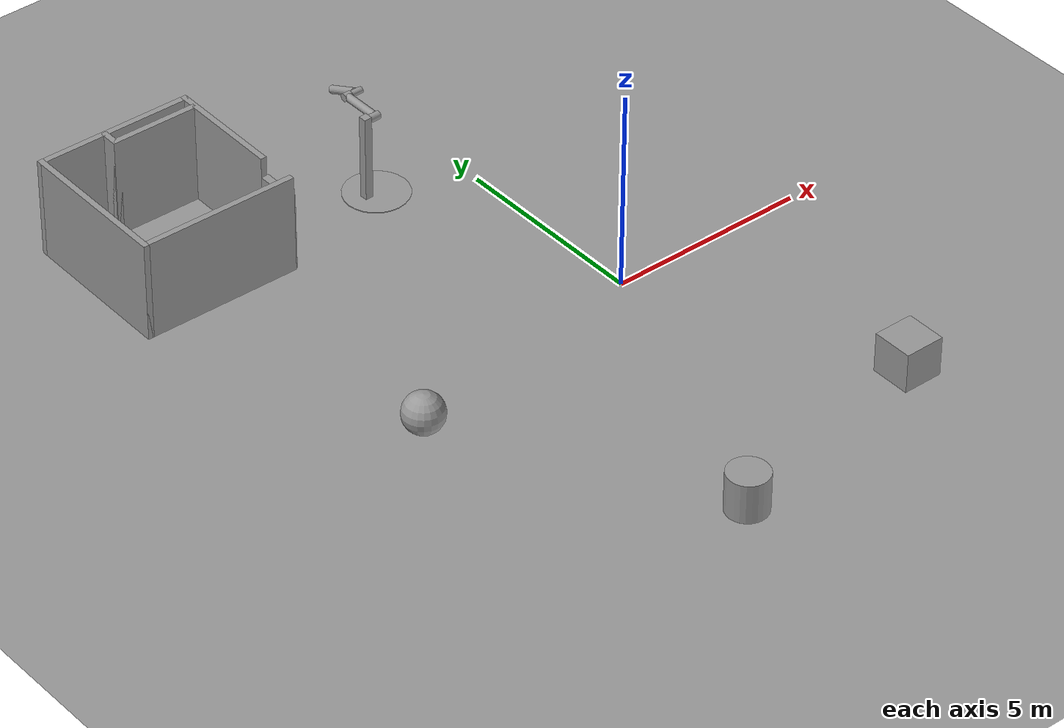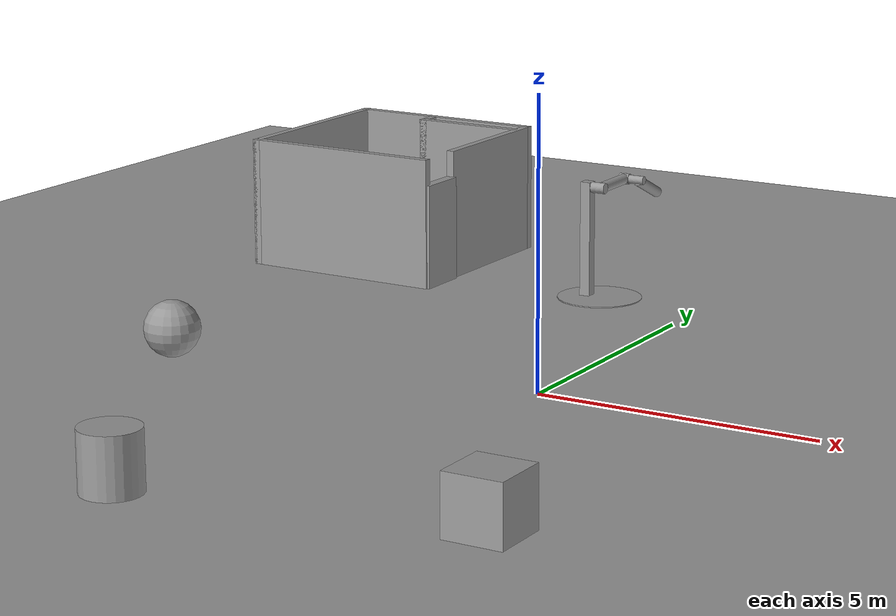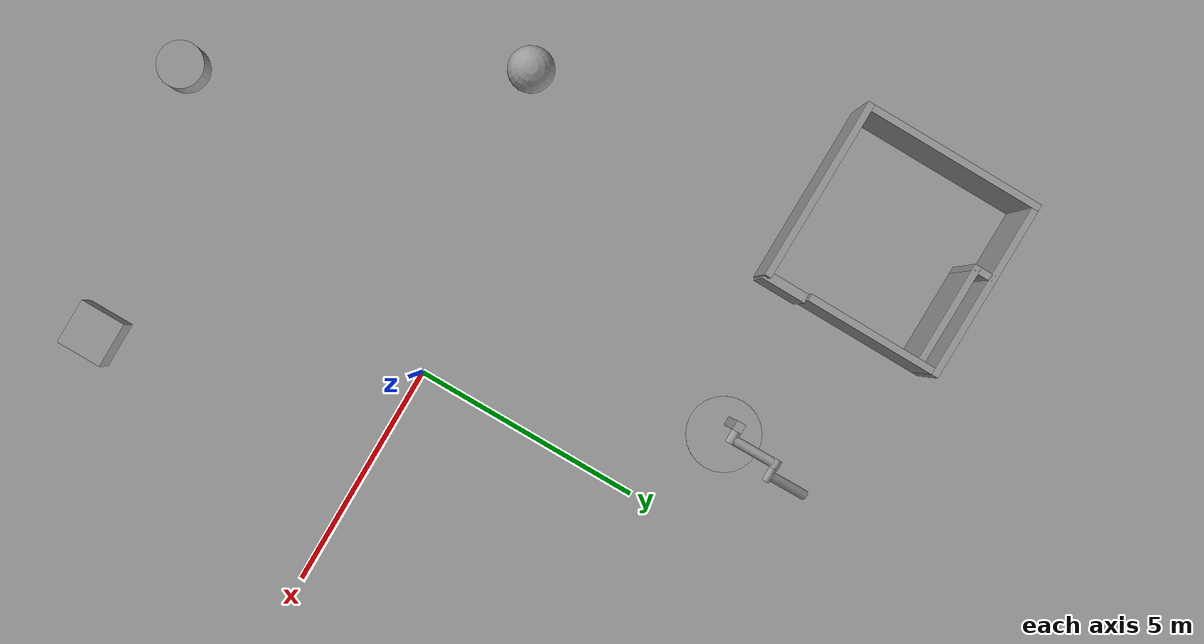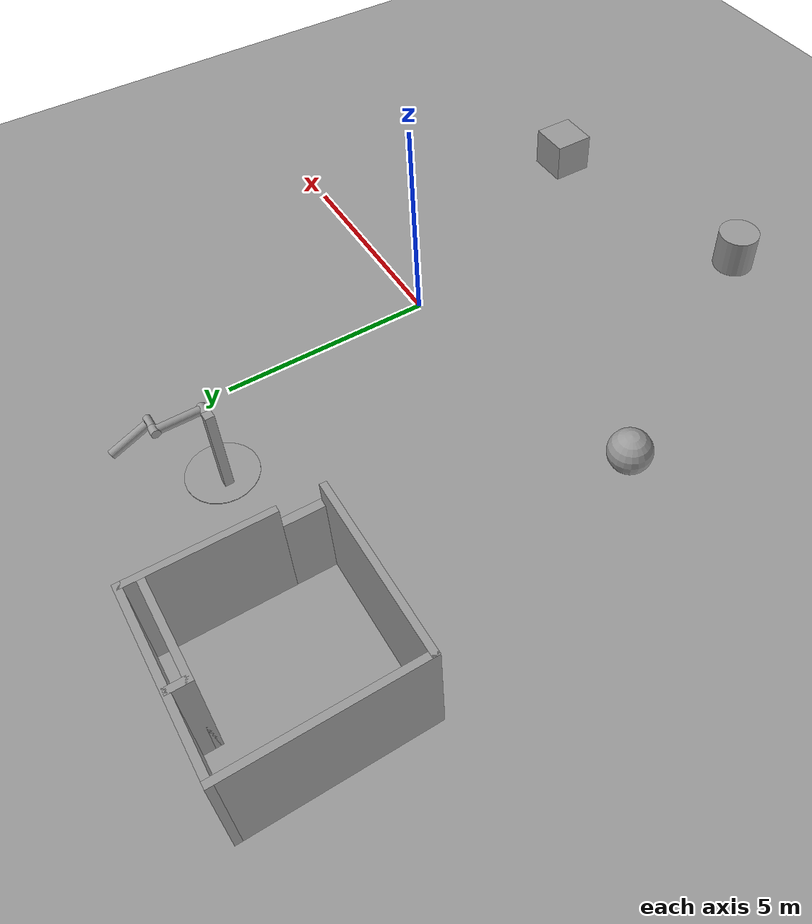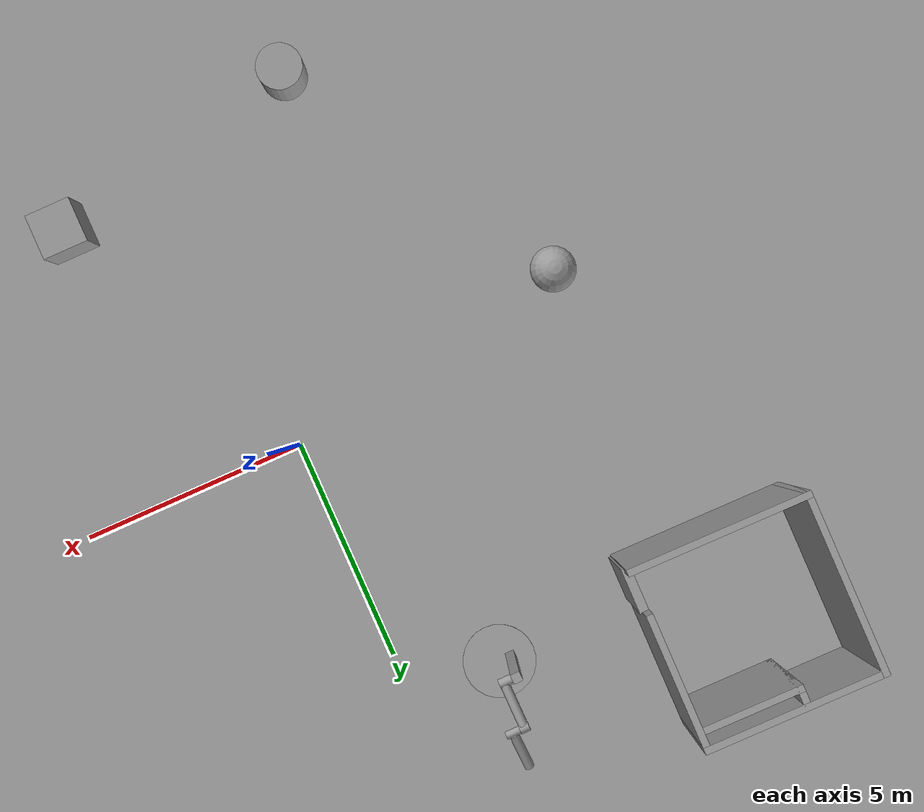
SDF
<sdf version="1.6">
 <world name="default">
  <light name="sun" type="directional">
   <pose>0 0 10 0 -0 0</pose>
   <diffuse>0.8 0.8 0.8 1</diffuse>
   <specular>0.2 0.2 0.2 1</specular>
   <attenuation>
    <range>1000</range>
    <constant>0.9</constant>
    <linear>0.01</linear>
    <quadratic>0.001</quadratic>
   </attenuation>
   <direction>0.5 0.1 -0.9</direction>
  </light>
  <scene><ambient>0.4 0.4 0.4 1</ambient><background>0.7 0.7 0.7 1</background><shadows>1</shadows></scene>
  <physics name="default_physics" default="0" type="ode">
   <max_step_size>0.01</max_step_size>
   <real_time_factor>1</real_time_factor>
   <real_time_update_rate>100</real_time_update_rate>
  </physics>
  <model name="ground_plane_0">
   <static>1</static>
   <link name="link">
    <collision name="collision">
     <geometry><plane><normal>0 0 1</normal><size>100 100</size></plane></geometry>
     <surface><friction><ode><mu>100</mu><mu2>50</mu2></ode></friction></surface>
    </collision>
    <visual name="visual">
     <cast_shadows>0</cast_shadows>
     <geometry><plane><normal>0 0 1</normal><size>100 100</size></plane></geometry>
     <material>
      <script><uri>file://media/materials/scripts/gazebo.material</uri><name>Gazebo/Grey</name></script>
     </material>
    </visual>
    <velocity_decay><linear>0</linear><angular>0</angular></velocity_decay>
   </link>
   <pose>0.497681 0 0 0 -0 0</pose>
  </model>
  <gravity>0 0 -9.8</gravity>
  <magnetic_field>6e-06 2.3e-05 -4.2e-05</magnetic_field>
  <atmosphere type="adiabatic"/>
  <spherical_coordinates>
   <surface_model>EARTH_WGS84</surface_model>
   <latitude_deg>0</latitude_deg>
   <longitude_deg>0</longitude_deg>
   <elevation>0</elevation>
   <heading_deg>0</heading_deg>
  </spherical_coordinates>
  <model name="room-2">
   <pose>-7.17125 6.96258 0 0 -0 3.13119</pose>
   <link name="Door_0">
    <collision name="Door_0_Collision">
     <geometry><box><size>0.980454 0.2 2</size></box></geometry>
     <pose>0 0 1 0 -0 0</pose>
    </collision>
    <visual name="Door_0_Visual">
     <pose>0 0 1 0 -0 0</pose>
     <geometry><box><size>0.980454 0.2 2</size></box></geometry>
     <material>
      <script><uri>file://media/materials/scripts/gazebo.material</uri><name>Gazebo/Grey</name></script>
     </material>
    </visual>
    <pose>-1.95196 1.47178 0 0 0 -1.57077</pose>
   </link>
   <link name="Wall_0">
    <collision name="Wall_0_Collision">
     <geometry><box><size>4 0.15 2.5</size></box></geometry>
     <pose>0 0 1.25 0 -0 0</pose>
    </collision>
    <visual name="Wall_0_Visual">
     <pose>0 0 1.25 0 -0 0</pose>
     <geometry><box><size>4 0.15 2.5</size></box></geometry>
     <material>
      <script><uri>file://media/materials/scripts/gazebo.material</uri><name>Gazebo/Grey</name></script>
      <ambient>1 1 1 1</ambient>
     </material>
    </visual>
    <pose>0 1.925 0 0 -0 0</pose>
   </link>
   <link name="Wall_1">
    <collision name="Wall_1_Collision">
     <geometry><box><size>4 0.15 2.5</size></box></geometry>
     <pose>0 0 1.25 0 -0 0</pose>
    </collision>
    <visual name="Wall_1_Visual">
     <pose>0 0 1.25 0 -0 0</pose>
     <geometry><box><size>4 0.15 2.5</size></box></geometry>
     <material>
      <script><uri>file://media/materials/scripts/gazebo.material</uri><name>Gazebo/Grey</name></script>
      <ambient>1 1 1 1</ambient>
     </material>
    </visual>
    <pose>1.925 0 0 0 0 -1.5708</pose>
   </link>
   <link name="Wall_2">
    <collision name="Wall_2_Collision">
     <geometry><box><size>4 0.15 2.5</size></box></geometry>
     <pose>0 0 1.25 0 -0 0</pose>
    </collision>
    <visual name="Wall_2_Visual">
     <pose>0 0 1.25 0 -0 0</pose>
     <geometry><box><size>4 0.15 2.5</size></box></geometry>
     <material>
      <script><uri>file://media/materials/scripts/gazebo.material</uri><name>Gazebo/Grey</name></script>
      <ambient>1 1 1 1</ambient>
     </material>
    </visual>
    <pose>0 -1.925 0 0 -0 3.14159</pose>
   </link>
   <link name="Wall_3">
    <collision name="Wall_3_Collision">
     <geometry><box><size>3 0.15 2.5</size></box></geometry>
     <pose>0 0 1.25 0 -0 0</pose>
    </collision>
    <visual name="Wall_3_Visual">
     <pose>0 0 1.25 0 -0 0</pose>
     <geometry><box><size>3 0.15 2.5</size></box></geometry>
     <material>
      <script><uri>file://media/materials/scripts/gazebo.material</uri><name>Gazebo/Grey</name></script>
      <ambient>1 1 1 1</ambient>
     </material>
    </visual>
    <pose>-1.925 -0.5 0 0 -0 1.5708</pose>
   </link>
   <link name="Wall_6">
    <collision name="Wall_6_Collision">
     <geometry><box><size>2.25 0.15 2.5</size></box></geometry>
     <pose>0 0 1.25 0 -0 0</pose>
    </collision>
    <visual name="Wall_6_Visual">
     <pose>0 0 1.25 0 -0 0</pose>
     <geometry><box><size>2.25 0.15 2.5</size></box></geometry>
     <material>
      <script><uri>file://media/materials/scripts/gazebo.material</uri><name>Gazebo/Grey</name></script>
      <ambient>1 1 1 1</ambient>
     </material>
    </visual>
    <pose>-0.800813 -1.54143 0 0 -0 0</pose>
   </link>
   <link name="Wall_7">
    <collision name="Wall_7_Collision">
     <geometry><box><size>0.5 0.15 2.5</size></box></geometry>
     <pose>0 0 1.25 0 -0 0</pose>
    </collision>
    <visual name="Wall_7_Visual">
     <pose>0 0 1.25 0 -0 0</pose>
     <geometry><box><size>0.5 0.15 2.5</size></box></geometry>
     <material>
      <script><uri>file://media/materials/scripts/gazebo.material</uri><name>Gazebo/Grey</name></script>
      <ambient>1 1 1 1</ambient>
     </material>
    </visual>
    <pose>0.249187 -1.71643 0 0 0 -1.5708</pose>
   </link>
   <static>1</static>
  </model>
  <model name="unit_cylinder_0">
   <pose>-2.956 -7.42781 0.499789 0.000422 0.000422 -2.8e-05</pose>
   <link name="link">
    <inertial>
     <mass>1</mass>
     <inertia><ixx>0.145833</ixx><ixy>0</ixy><ixz>0</ixz><iyy>0.145833</iyy><iyz>0</iyz><izz>0.125</izz></inertia>
    </inertial>
    <collision name="collision">
     <geometry><cylinder><radius>0.5</radius><length>1</length></cylinder></geometry>
    </collision>
    <visual name="visual">
     <geometry><cylinder><radius>0.5</radius><length>1</length></cylinder></geometry>
     <material>
      <script><name>Gazebo/Grey</name><uri>file://media/materials/scripts/gazebo.material</uri></script>
     </material>
    </visual>
   </link>
  </model>
  <model name="unit_box_0">
   <pose>2.71027 -6.22757 0.499802 0.000397 0 -1e-06</pose>
   <link name="link">
    <inertial>
     <mass>1</mass>
     <inertia>
      <ixx>0.166667</ixx>
      <ixy>0</ixy>
      <ixz>0</ixz>
      <iyy>0.166667</iyy>
      <iyz>0</iyz>
      <izz>0.166667</izz>
     </inertia>
    </inertial>
    <collision name="collision"><geometry><box><size>1 1 1</size></box></geometry></collision>
    <visual name="visual">
     <geometry><box><size>1 1 1</size></box></geometry>
     <material>
      <script><name>Gazebo/Grey</name><uri>file://media/materials/scripts/gazebo.material</uri></script>
     </material>
    </visual>
   </link>
  </model>
  <model name="double_pendulum_with_base">
   <link name="base">
    <inertial>
     <mass>100</mass>
     <inertia><ixx>1</ixx><ixy>0</ixy><ixz>0</ixz><iyy>1</iyy><iyz>0</iyz><izz>1</izz></inertia>
    </inertial>
    <visual name="vis_plate_on_ground">
     <pose>0 0 0.01 0 -0 0</pose>
     <geometry><cylinder><radius>0.8</radius><length>0.02</length></cylinder></geometry>
     <material>
      <script><uri>file://media/materials/scripts/gazebo.material</uri><name>Gazebo/Grey</name></script>
     </material>
    </visual>
    <visual name="vis_pole">
     <pose>-0.275 0 1.1 0 -0 0</pose>
     <geometry><box><size>0.2 0.2 2.2</size></box></geometry>
     <material>
      <script><uri>file://media/materials/scripts/gazebo.material</uri><name>Gazebo/Grey</name></script>
     </material>
    </visual>
    <collision name="col_plate_on_ground">
     <pose>0 0 0.01 0 -0 0</pose>
     <geometry><cylinder><radius>0.8</radius><length>0.02</length></cylinder></geometry>
    </collision>
    <collision name="col_pole">
     <pose>-0.275 0 1.1 0 -0 0</pose>
     <geometry><box><size>0.2 0.2 2.2</size></box></geometry>
    </collision>
   </link>
   <link name="upper_link">
    <pose>0 0 2.1 -1.5708 0 0</pose>
    <inertial>
     <pose>0 0 0.5 0 -0 0</pose>
     <inertia><ixx>1</ixx><ixy>0</ixy><ixz>0</ixz><iyy>1</iyy><iyz>0</iyz><izz>1</izz></inertia>
     <mass>1</mass>
    </inertial>
    <visual name="vis_upper_joint">
     <pose>-0.05 0 0 3.14159 1.57079 3.14159</pose>
     <geometry><cylinder><radius>0.1</radius><length>0.3</length></cylinder></geometry>
     <material>
      <script><uri>file://media/materials/scripts/gazebo.material</uri><name>Gazebo/Grey</name></script>
     </material>
    </visual>
    <visual name="vis_lower_joint">
     <pose>0 0 1 3.14159 1.57079 3.14159</pose>
     <geometry><cylinder><radius>0.1</radius><length>0.2</length></cylinder></geometry>
     <material>
      <script><uri>file://media/materials/scripts/gazebo.material</uri><name>Gazebo/Grey</name></script>
     </material>
    </visual>
    <visual name="vis_cylinder">
     <pose>0 0 0.5 0 -0 0</pose>
     <geometry><cylinder><radius>0.1</radius><length>0.9</length></cylinder></geometry>
     <material>
      <script><uri>file://media/materials/scripts/gazebo.material</uri><name>Gazebo/Grey</name></script>
     </material>
    </visual>
    <collision name="col_upper_joint">
     <pose>-0.05 0 0 3.14159 1.57079 3.14159</pose>
     <geometry><cylinder><radius>0.1</radius><length>0.3</length></cylinder></geometry>
    </collision>
    <collision name="col_lower_joint">
     <pose>0 0 1 3.14159 1.57079 3.14159</pose>
     <geometry><cylinder><radius>0.1</radius><length>0.2</length></cylinder></geometry>
    </collision>
    <collision name="col_cylinder">
     <pose>0 0 0.5 0 -0 0</pose>
     <geometry><cylinder><radius>0.1</radius><length>0.9</length></cylinder></geometry>
    </collision>
   </link>
   <link name="lower_link">
    <pose>0.25 1 2.1 -2 0 0</pose>
    <inertial>
     <pose>0 0 0.5 0 -0 0</pose>
     <inertia><ixx>1</ixx><ixy>0</ixy><ixz>0</ixz><iyy>1</iyy><iyz>0</iyz><izz>1</izz></inertia>
     <mass>1</mass>
    </inertial>
    <visual name="vis_lower_joint">
     <pose>0 0 0 3.14159 1.57079 3.14159</pose>
     <geometry><cylinder><radius>0.08</radius><length>0.3</length></cylinder></geometry>
     <material>
      <script><uri>file://media/materials/scripts/gazebo.material</uri><name>Gazebo/Grey</name></script>
     </material>
    </visual>
    <visual name="vis_cylinder">
     <pose>0 0 0.5 0 -0 0</pose>
     <geometry><cylinder><radius>0.1</radius><length>0.9</length></cylinder></geometry>
     <material>
      <script><uri>file://media/materials/scripts/gazebo.material</uri><name>Gazebo/Grey</name></script>
     </material>
    </visual>
    <collision name="col_lower_joint">
     <pose>0 0 0 3.14159 1.57079 3.14159</pose>
     <geometry><cylinder><radius>0.08</radius><length>0.3</length></cylinder></geometry>
    </collision>
    <collision name="col_cylinder">
     <pose>0 0 0.5 0 -0 0</pose>
     <geometry><cylinder><radius>0.1</radius><length>0.9</length></cylinder></geometry>
    </collision>
   </link>
   <joint name="upper_joint" type="revolute">
    <parent>base</parent>
    <child>upper_link</child>
    <axis>
     <xyz>1 0 0</xyz>
     <use_parent_model_frame>1</use_parent_model_frame>
     <limit><lower>-1e+16</lower><upper>1e+16</upper></limit>
     <dynamics><spring_reference>0</spring_reference><spring_stiffness>0</spring_stiffness></dynamics>
    </axis>
   </joint>
   <joint name="lower_joint" type="revolute">
    <parent>upper_link</parent>
    <child>lower_link</child>
    <axis>
     <xyz>1 0 0</xyz>
     <use_parent_model_frame>1</use_parent_model_frame>
     <limit><lower>-1e+16</lower><upper>1e+16</upper></limit>
     <dynamics><spring_reference>0</spring_reference><spring_stiffness>0</spring_stiffness></dynamics>
    </axis>
   </joint>
   <pose>-2.05618 6.07118 -0.000962 1e-06 -0.000102 0.006653</pose>
  </model>
  <model name="unit_sphere_0">
   <pose>-6.54329 -1.21567 0.5 0 -0 0</pose>
   <link name="link">
    <inertial>
     <mass>1</mass>
     <inertia><ixx>0.1</ixx><ixy>0</ixy><ixz>0</ixz><iyy>0.1</iyy><iyz>0</iyz><izz>0.1</izz></inertia>
    </inertial>
    <collision name="collision"><geometry><sphere><radius>0.5</radius></sphere></geometry></collision>
    <visual name="visual">
     <geometry><sphere><radius>0.5</radius></sphere></geometry>
     <material>
      <script><name>Gazebo/Grey</name><uri>file://media/materials/scripts/gazebo.material</uri></script>
     </material>
    </visual>
   </link>
  </model>
 </world>
</sdf>
